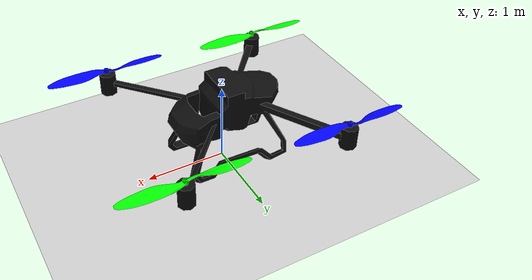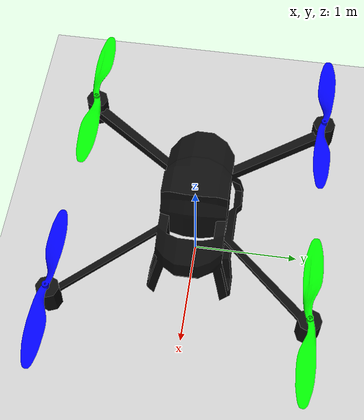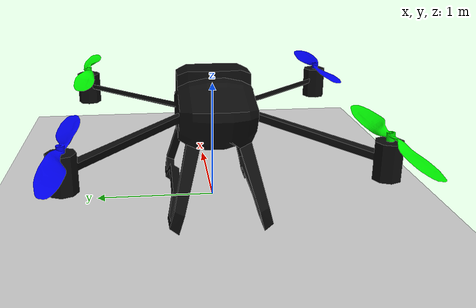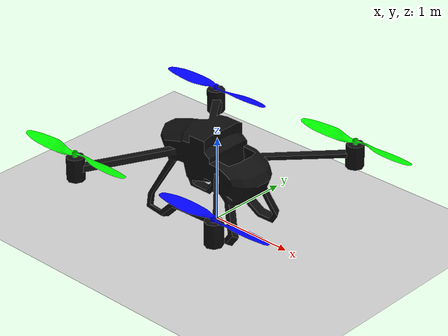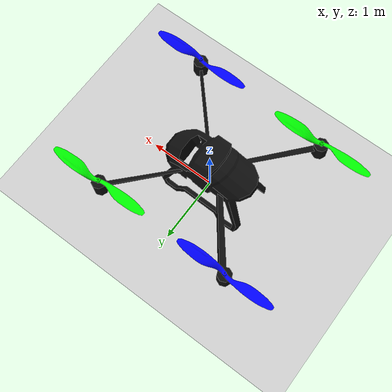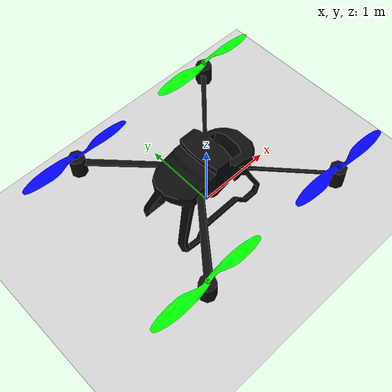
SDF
<?xml version="1.0" ?>
<sdf version="1.9">
  <world name="iris_runway">
    <physics name="1ms" type="ignore">
      <max_step_size>0.001</max_step_size>
      <real_time_factor>1.0</real_time_factor>
    </physics>

    <plugin filename="gz-sim-physics-system"
      name="gz::sim::systems::Physics">
    </plugin>
    <plugin
      filename="gz-sim-sensors-system"
      name="gz::sim::systems::Sensors">
      <render_engine>ogre2</render_engine>
    </plugin>
    <plugin filename="gz-sim-user-commands-system"
      name="gz::sim::systems::UserCommands">
    </plugin>
    <plugin filename="gz-sim-scene-broadcaster-system"
      name="gz::sim::systems::SceneBroadcaster">
    </plugin>
    <plugin filename="gz-sim-imu-system"
      name="gz::sim::systems::Imu">
    </plugin>

    <scene>
      <ambient>1.0 1.0 1.0</ambient>
      <background>0.8 0.8 0.8</background>
      <sky></sky>
    </scene>

    <spherical_coordinates>
      <latitude_deg>-35.363262</latitude_deg>
      <longitude_deg>149.165237</longitude_deg>
      <elevation>584</elevation>
      <heading_deg>0</heading_deg>
      <surface_model>EARTH_WGS84</surface_model>
    </spherical_coordinates>

    <light type="directional" name="sun">
      <cast_shadows>true</cast_shadows>
      <pose>0 0 10 0 0 0</pose>
      <diffuse>0.8 0.8 0.8 1</diffuse>
      <specular>0.8 0.8 0.8 1</specular>
      <attenuation>
        <range>1000</range>
        <constant>0.9</constant>
        <linear>0.01</linear>
        <quadratic>0.001</quadratic>
      </attenuation>
      <direction>-0.5 0.1 -0.9</direction>
    </light>

    <model name="ground_plane">
        <static>true</static>
        <link name="link">
            <collision name="collision">
            <geometry>
                <plane>
                <normal>0 0 1</normal>
                </plane>
            </geometry>
            </collision>
            <visual name="visual">
            <geometry>
                <plane>
                <normal>0 0 1</normal>
                <size>100 100</size>
                </plane>
            </geometry>
            <material>
                <ambient>0.8 0.8 0.8 1</ambient>
                <diffuse>0.8 0.8 0.8 1</diffuse>
                <specular>0.8 0.8 0.8 1</specular>
            </material>
            </visual>
        </link>
    </model>

    <include>
      <uri>model://our_drone_agro</uri>
      <pose relative_to='world'>0 0 0.75 0 0 0</pose>
    </include>

  </world>
</sdf>

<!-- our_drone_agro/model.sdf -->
<sdf version="1.9">
  <model name="our_drone">
    <include merge="true">
      <uri>model://drone</uri>
      <name>drone</name>
    </include>

    <!-- plugins -->
    <plugin filename="gz-sim-joint-state-publisher-system"
      name="gz::sim::systems::JointStatePublisher">
    </plugin>

    <plugin
      filename="gz-sim-odometry-publisher-system"
      name="gz::sim::systems::OdometryPublisher">
      <odom_frame>odom</odom_frame>
      <robot_base_frame>base_link</robot_base_frame>
      <dimensions>3</dimensions>
    </plugin>

    <plugin filename="gz-sim-lift-drag-system"
        name="gz::sim::systems::LiftDrag">
      <a0>0.3</a0>
      <alpha_stall>1.4</alpha_stall>
      <cla>4.2500</cla>
      <cda>0.10</cda>
      <cma>0.0</cma>
      <cla_stall>-0.025</cla_stall>
      <cda_stall>0.0</cda_stall>
      <cma_stall>0.0</cma_stall>
      <area>0.002</area>
      <air_density>1.2041</air_density>
      <cp>0.084 0 0</cp>
      <forward>0 1 0</forward>
      <upward>0 0 1</upward>
      <link_name>rotor_0</link_name>
    </plugin>
    <plugin filename="gz-sim-lift-drag-system"
        name="gz::sim::systems::LiftDrag">
      <a0>0.3</a0>
      <alpha_stall>1.4</alpha_stall>
      <cla>4.2500</cla>
      <cda>0.10</cda>
      <cma>0.0</cma>
      <cla_stall>-0.025</cla_stall>
      <cda_stall>0.0</cda_stall>
      <cma_stall>0.0</cma_stall>
      <area>0.002</area>
      <air_density>1.2041</air_density>
      <cp>-0.084 0 0</cp>
      <forward>0 -1 0</forward>
      <upward>0 0 1</upward>
      <link_name>rotor_0</link_name>
    </plugin>

    <plugin filename="gz-sim-lift-drag-system"
        name="gz::sim::systems::LiftDrag">
      <a0>0.3</a0>
      <alpha_stall>1.4</alpha_stall>
      <cla>4.2500</cla>
      <cda>0.10</cda>
      <cma>0.0</cma>
      <cla_stall>-0.025</cla_stall>
      <cda_stall>0.0</cda_stall>
      <cma_stall>0.0</cma_stall>
      <area>0.002</area>
      <air_density>1.2041</air_density>
      <cp>0.084 0 0</cp>
      <forward>0 1 0</forward>
      <upward>0 0 1</upward>
      <link_name>rotor_1</link_name>
    </plugin>
    <plugin filename="gz-sim-lift-drag-system"
        name="gz::sim::systems::LiftDrag">
      <a0>0.3</a0>
      <alpha_stall>1.4</alpha_stall>
      <cla>4.2500</cla>
      <cda>0.10</cda>
      <cma>0.0</cma>
      <cla_stall>-0.025</cla_stall>
      <cda_stall>0.0</cda_stall>
      <cma_stall>0.0</cma_stall>
      <area>0.002</area>
      <air_density>1.2041</air_density>
      <cp>-0.084 0 0</cp>
      <forward>0 -1 0</forward>
      <upward>0 0 1</upward>
      <link_name>rotor_1</link_name>
    </plugin>

    <plugin filename="gz-sim-lift-drag-system"
        name="gz::sim::systems::LiftDrag">
      <a0>0.3</a0>
      <alpha_stall>1.4</alpha_stall>
      <cla>4.2500</cla>
      <cda>0.10</cda>
      <cma>0.0</cma>
      <cla_stall>-0.025</cla_stall>
      <cda_stall>0.0</cda_stall>
      <cma_stall>0.0</cma_stall>
      <area>0.002</area>
      <air_density>1.2041</air_density>
      <cp>0.084 0 0</cp>
      <forward>0 -1 0</forward>
      <upward>0 0 1</upward>
      <link_name>rotor_2</link_name>
    </plugin>
    <plugin filename="gz-sim-lift-drag-system"
        name="gz::sim::systems::LiftDrag">
      <a0>0.3</a0>
      <alpha_stall>1.4</alpha_stall>
      <cla>4.2500</cla>
      <cda>0.10</cda>
      <cma>0.0</cma>
      <cla_stall>-0.025</cla_stall>
      <cda_stall>0.0</cda_stall>
      <cma_stall>0.0</cma_stall>
      <area>0.002</area>
      <air_density>1.2041</air_density>
      <cp>-0.084 0 0</cp>
      <forward>0 1 0</forward>
      <upward>0 0 1</upward>
      <link_name>rotor_2</link_name>
    </plugin>

    <plugin filename="gz-sim-lift-drag-system"
        name="gz::sim::systems::LiftDrag">
      <a0>0.3</a0>
      <alpha_stall>1.4</alpha_stall>
      <cla>4.2500</cla>
      <cda>0.10</cda>
      <cma>0.0</cma>
      <cla_stall>-0.025</cla_stall>
      <cda_stall>0.0</cda_stall>
      <cma_stall>0.0</cma_stall>
      <area>0.002</area>
      <air_density>1.2041</air_density>
      <cp>0.084 0 0</cp>
      <forward>0 -1 0</forward>
      <upward>0 0 1</upward>
      <link_name>rotor_3</link_name>
    </plugin>
    <plugin filename="gz-sim-lift-drag-system"
        name="gz::sim::systems::LiftDrag">
      <a0>0.3</a0>
      <alpha_stall>1.4</alpha_stall>
      <cla>4.2500</cla>
      <cda>0.10</cda>
      <cma>0.0</cma>
      <cla_stall>-0.025</cla_stall>
      <cda_stall>0.0</cda_stall>
      <cma_stall>0.0</cma_stall>
      <area>0.002</area>
      <air_density>1.2041</air_density>
      <cp>-0.084 0 0</cp>
      <forward>0 1 0</forward>
      <upward>0 0 1</upward>
      <link_name>rotor_3</link_name>
    </plugin>

    <plugin filename="gz-sim-apply-joint-force-system"
      name="gz::sim::systems::ApplyJointForce">
      <joint_name>rotor_0_joint</joint_name>
    </plugin>
    <plugin filename="gz-sim-apply-joint-force-system"
      name="gz::sim::systems::ApplyJointForce">
      <joint_name>rotor_1_joint</joint_name>
    </plugin>
    <plugin filename="gz-sim-apply-joint-force-system"
      name="gz::sim::systems::ApplyJointForce">
      <joint_name>rotor_2_joint</joint_name>
    </plugin>
    <plugin filename="gz-sim-apply-joint-force-system"
      name="gz::sim::systems::ApplyJointForce">
      <joint_name>rotor_3_joint</joint_name>
    </plugin>

    <plugin filename="gz-sim-linearbatteryplugin-system"
      name="gz::sim::systems::LinearBatteryPlugin">
      <battery_name>lipo_3500mAh</battery_name>
      <fix_issue_225>true</fix_issue_225>
      <open_circuit_voltage_constant_coef>12.6</open_circuit_voltage_constant_coef>
      <open_circuit_voltage_linear_coef>-2.7</open_circuit_voltage_linear_coef>
      <capacity>3.5</capacity>
      <voltage>12.6</voltage>
      <initial_charge>3.5</initial_charge>
      <power_load>200.0</power_load>
      <start_draining>false</start_draining>
    </plugin>

    <plugin name="ArduPilotPlugin"
      filename="ArduPilotPlugin">
      <fdm_addr>127.0.0.1</fdm_addr>
      <fdm_port_in>9002</fdm_port_in>
      <connectionTimeoutMaxCount>5</connectionTimeoutMaxCount>
      <lock_step>1</lock_step>

      <!-- Frame conventions
        Require by ArduPilot: change model and gazebo from XYZ to XY-Z coordinates
      -->
      <modelXYZToAirplaneXForwardZDown degrees="true">0 0 0 180 0 0</modelXYZToAirplaneXForwardZDown>
      <gazeboXYZToNED degrees="true">0 0 0 180 0 90</gazeboXYZToNED>

      <!-- Sensors -->
      <imuName>imu_link::imu_sensor</imuName>

      <!-- Control channels -->
      <!--
          incoming control command [0, 1]
          so offset it by 0 to get [0, 1]
          and divide max target by 1.
          offset = 0
          multiplier = 838 max rpm / 1 = 838
        -->
      <control channel="0">
        <jointName>rotor_0_joint</jointName>
        <useForce>1</useForce>
        <multiplier>838</multiplier>
        <offset>0</offset>
        <servo_min>1100</servo_min>
        <servo_max>1900</servo_max>
        <type>VELOCITY</type>
        <p_gain>0.20</p_gain>
        <i_gain>0</i_gain>
        <d_gain>0</d_gain>
        <i_max>0</i_max>
        <i_min>0</i_min>
        <cmd_max>2.5</cmd_max>
        <cmd_min>-2.5</cmd_min>
        <controlVelocitySlowdownSim>1</controlVelocitySlowdownSim>
      </control>

      <control channel="1">
        <jointName>rotor_1_joint</jointName>
        <useForce>1</useForce>
        <multiplier>838</multiplier>
        <offset>0</offset>
        <servo_min>1100</servo_min>
        <servo_max>1900</servo_max>
        <type>VELOCITY</type>
        <p_gain>0.20</p_gain>
        <i_gain>0</i_gain>
        <d_gain>0</d_gain>
        <i_max>0</i_max>
        <i_min>0</i_min>
        <cmd_max>2.5</cmd_max>
        <cmd_min>-2.5</cmd_min>
        <controlVelocitySlowdownSim>1</controlVelocitySlowdownSim>
      </control>

      <control channel="2">
        <jointName>rotor_2_joint</jointName>
        <useForce>1</useForce>
        <multiplier>-838</multiplier>
        <offset>0</offset>
        <servo_min>1100</servo_min>
        <servo_max>1900</servo_max>
        <type>VELOCITY</type>
        <p_gain>0.20</p_gain>
        <i_gain>0</i_gain>
        <d_gain>0</d_gain>
        <i_max>0</i_max>
        <i_min>0</i_min>
        <cmd_max>2.5</cmd_max>
        <cmd_min>-2.5</cmd_min>
        <controlVelocitySlowdownSim>1</controlVelocitySlowdownSim>
      </control>

      <control channel="3">
        <jointName>rotor_3_joint</jointName>
        <useForce>1</useForce>
        <multiplier>-838</multiplier>
        <offset>0</offset>
        <servo_min>1100</servo_min>
        <servo_max>1900</servo_max>
        <type>VELOCITY</type>
        <p_gain>0.20</p_gain>
        <i_gain>0</i_gain>
        <d_gain>0</d_gain>
        <i_max>0</i_max>
        <i_min>0</i_min>
        <cmd_max>2.5</cmd_max>
        <cmd_min>-2.5</cmd_min>
        <controlVelocitySlowdownSim>1</controlVelocitySlowdownSim>
      </control>

    </plugin>

  </model>
</sdf>

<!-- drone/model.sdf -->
<sdf version='1.9'>
  <model name='drone'>
    <pose>0 0 0 0 0 0</pose>
    <link name='base_link'>
      <velocity_decay>
        <linear>0.0</linear>
        <angular>0.0</angular>
      </velocity_decay>
      <inertial>
        <pose>0 0 0 0 0 0</pose>
        <mass>1.5</mass>
        <inertia>
          <ixx>1.6975</ixx>
          <ixy>0</ixy>
          <ixz>0</ixz>
          <iyy>1.6975</iyy>
          <iyz>0</iyz>
          <izz>1.6975</izz>
        </inertia>
      </inertial>
      <collision name='base_collision'>
        <pose>0 0 0 0 0 0</pose>
        <geometry>
          <box>
            <size>2.3 2.3 1.5</size>
          </box>
        </geometry>
        <surface>
          <contact>
            <ode>
              <max_vel>100.0</max_vel>
              <min_depth>0.001</min_depth>
            </ode>
          </contact>
          <friction>
            <ode>
              <mu>100000.0</mu>
              <mu2>100000.0</mu2>
            </ode>
          </friction>
        </surface>
      </collision>
      <visual name='base_visual'>
        <geometry>
          <mesh>
            <uri>model://drone/meshes/our_drone.dae</uri>
          </mesh>
        </geometry>
        <material>
          <ambient>0.05 0.05 0.05</ambient>
          <diffuse>0.05 0.05 0.05</diffuse>
          <specular>1 1 1 1</specular>
          <pbr>
            <metal>
              <metalness>0.5</metalness>
              <roughness>0.5</roughness>
            </metal>
          </pbr>
        </material>
      </visual>

      <!-- Additional sensors -->
      <sensor name="air_pressure_sensor" type="air_pressure">
        <always_on>1</always_on>
        <update_rate>30</update_rate>
      </sensor>
      <sensor name="air_speed_sensor" type="air_speed">
        <always_on>1</always_on>
        <update_rate>30</update_rate>
      </sensor>
      <sensor name="altimeter_sensor" type="altimeter">
        <always_on>1</always_on>
        <update_rate>30</update_rate>
      </sensor>
      <sensor name="magnetometer_sensor" type="magnetometer">
        <always_on>1</always_on>
        <update_rate>30</update_rate>
      </sensor>
      <sensor name="navsat_sensor" type="navsat">
        <always_on>1</always_on>
        <update_rate>30</update_rate>
      </sensor>

    </link>
    <link name='imu_link'>
      <inertial>
        <pose>0 0 0 0 0 0</pose>
        <mass>0.15</mass>
        <inertia>
          <ixx>0.00001</ixx>
          <ixy>0</ixy>
          <ixz>0</ixz>
          <iyy>0.00002</iyy>
          <iyz>0</iyz>
          <izz>0.00002</izz>
        </inertia>
      </inertial>
      <sensor name="imu_sensor" type="imu">
        <pose degrees="true">0 0 0 180 0 0</pose>
        <always_on>1</always_on>
        <update_rate>1000.0</update_rate>
      </sensor>
    </link>
    <joint name='imu_joint' type='revolute'>
      <child>imu_link</child>
      <parent>base_link</parent>
      <axis>
        <xyz>0 0 1</xyz>
        <limit>
          <lower>0</lower>
          <upper>0</upper>
          <effort>0</effort>
          <velocity>0</velocity>
        </limit>
        <dynamics>
          <damping>1.0</damping>
        </dynamics>
      </axis>
    </joint>
    <link name='rotor_0'>
      <pose>1.0224 -1.1537 0.15 0 0 0</pose>
      <inertial>
        <pose>0 0 0 0 0 0</pose>
        <mass>0.025</mass>
        <inertia>
          <ixx>0.00000003125</ixx>
          <ixy>0</ixy>
          <ixz>0</ixz>
          <iyy>0.00000003125</iyy>
          <iyz>0</iyz>
          <izz>0.000000000015</izz>
        </inertia>
      </inertial>
      <visual name='rotor_0_visual'>
        <pose>0 0 0 0 0 0</pose>
        <geometry>
          <mesh>
            <scale>1 1 1</scale>
            <uri>model://drone/meshes/ccw.dae</uri>
          </mesh>
        </geometry>
        <material>
          <ambient>0 0 1</ambient>
          <diffuse>0 0 1</diffuse>
          <specular>1 1 1 1</specular>
          <pbr>
            <metal>
              <metalness>0.5</metalness>
              <roughness>0.5</roughness>
            </metal>
          </pbr>
        </material>
      </visual>
      <gravity>1</gravity>
      <velocity_decay/>
      <self_collide>0</self_collide>
    </link>
    <joint name='rotor_0_joint' type='revolute'>
      <child>rotor_0</child>
      <parent>base_link</parent>
      <axis>
        <xyz>0 0 1</xyz>
        <limit>
          <lower>-1e+16</lower>
          <upper>1e+16</upper>
        </limit>
        <dynamics>
          <damping>0.004</damping>
        </dynamics>
      </axis>
      <physics>
        <ode>
          <implicit_spring_damper>1</implicit_spring_damper>
        </ode>
      </physics>
    </joint>
    <link name='rotor_1'>
      <pose>-1.0551 1.1056 0.1 0 0 0</pose>
      <inertial>
        <pose>0 0 0 0 0 0</pose>
        <mass>0.025</mass>
        <inertia>
          <ixx>0.00000003125</ixx>
          <ixy>0</ixy>
          <ixz>0</ixz>
          <iyy>0.00000003125</iyy>
          <iyz>0</iyz>
          <izz>0.000000000015</izz>
        </inertia>
      </inertial>
      <visual name='rotor_1_visual'>
        <pose>0 0 0 0 0 0</pose>
        <geometry>
          <mesh>
            <scale>1 1 1</scale>
            <uri>model://drone/meshes/ccw.dae</uri>
          </mesh>
        </geometry>
        <material>
          <ambient>0 0 1 1</ambient>
          <diffuse>0 0 1 1</diffuse>
          <specular>1 1 1 1</specular>
          <pbr>
            <metal>
              <metalness>0.5</metalness>
              <roughness>0.5</roughness>
            </metal>
          </pbr>
        </material>
      </visual>
      <gravity>1</gravity>
      <velocity_decay/>
      <self_collide>0</self_collide>
    </link>
    <joint name='rotor_1_joint' type='revolute'>
      <child>rotor_1</child>
      <parent>base_link</parent>
      <axis>
        <xyz>0 0 1</xyz>
        <limit>
          <lower>-1e+16</lower>
          <upper>1e+16</upper>
        </limit>
        <dynamics>
          <damping>0.004</damping>
        </dynamics>
      </axis>
      <physics>
        <ode>
          <implicit_spring_damper>1</implicit_spring_damper>
        </ode>
      </physics>
    </joint>
    <link name='rotor_2'>
      <pose>0.99202 1.1058 0.15 0 0 0</pose>
      <inertial>
        <pose>0 0 0 0 0 0</pose>
        <mass>0.025</mass>
        <inertia>
          <ixx>0.00000003125</ixx>
          <ixy>0</ixy>
          <ixz>0</ixz>
          <iyy>0.00000003125</iyy>
          <iyz>0</iyz>
          <izz>0.000000000015</izz>
        </inertia>
      </inertial>
      <visual name='rotor_2_visual'>
        <pose>0 0 0 0 0 0</pose>
        <geometry>
          <mesh>
            <scale>1 1 1</scale>
            <uri>model://drone/meshes/cw.dae</uri>
          </mesh>
        </geometry>
        <material>
          <ambient>0 1 0</ambient>
          <diffuse>0 1 0</diffuse>
          <specular>1 1 1 1</specular>
          <pbr>
            <metal>
              <metalness>0.5</metalness>
              <roughness>0.5</roughness>
            </metal>
          </pbr>
        </material>
      </visual>
      <gravity>1</gravity>
      <velocity_decay/>
      <self_collide>0</self_collide>
    </link>
    <joint name='rotor_2_joint' type='revolute'>
      <child>rotor_2</child>
      <parent>base_link</parent>
      <axis>
        <xyz>0 0 1</xyz>
        <limit>
          <lower>-1e+16</lower>
          <upper>1e+16</upper>
        </limit>
        <dynamics>
          <damping>0.004</damping>
        </dynamics>
      </axis>
      <physics>
        <ode>
          <implicit_spring_damper>1</implicit_spring_damper>
        </ode>
      </physics>
    </joint>
    <link name='rotor_3'>
      <pose>-1.0865 -1.1238 0.11 0 0 0</pose>
      <inertial>
        <pose>0 0 0 0 0 0</pose>
        <mass>0.025</mass>
        <inertia>
          <ixx>0.00000003125</ixx>
          <ixy>0</ixy>
          <ixz>0</ixz>
          <iyy>0.00000003125</iyy>
          <iyz>0</iyz>
          <izz>0.000000000015</izz>
        </inertia>
      </inertial>
      <visual name='rotor_3_visual'>
        <pose>0 0 0 0 0 0</pose>
        <geometry>
          <mesh>
            <scale>1 1 1</scale>
            <uri>model://drone/meshes/cw.dae</uri>
          </mesh>
        </geometry>
        <material>
          <ambient>0 1 0</ambient>
          <diffuse>0 1 0</diffuse>
          <specular>1 1 1 1</specular>
          <pbr>
            <metal>
              <metalness>0.5</metalness>
              <roughness>0.5</roughness>
            </metal>
          </pbr>
        </material>
      </visual>
      <gravity>1</gravity>
      <velocity_decay/>
      <self_collide>0</self_collide>
    </link>
    <joint name='rotor_3_joint' type='revolute'>
      <child>rotor_3</child>
      <parent>base_link</parent>
      <axis>
        <xyz>0 0 1</xyz>
        <limit>
          <lower>-1e+16</lower>
          <upper>1e+16</upper>
        </limit>
        <dynamics>
          <damping>0.004</damping>
        </dynamics>
      </axis>
      <physics>
        <ode>
          <implicit_spring_damper>1</implicit_spring_damper>
        </ode>
      </physics>
    </joint>
  </model>
</sdf>
